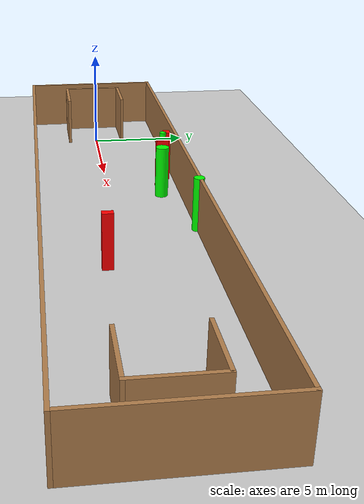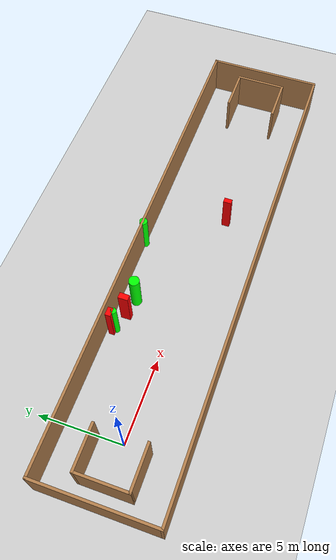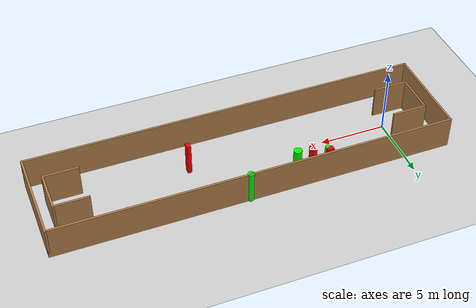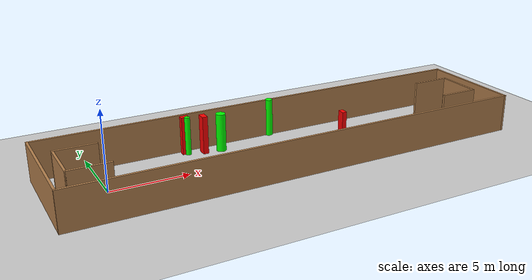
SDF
<sdf version="1.7">
 <world name="default">
  <light name="sun" type="directional">
   <pose>0 0 10 0 -0 0</pose>
   <diffuse>0.8 0.8 0.8 1</diffuse>
   <specular>0.2 0.2 0.2 1</specular>
   <attenuation>
    <range>1000</range>
    <constant>0.9</constant>
    <linear>0.01</linear>
    <quadratic>0.001</quadratic>
   </attenuation>
   <direction>-0.5 0.1 -0.9</direction>
   <spot><inner_angle>0</inner_angle><outer_angle>0</outer_angle><falloff>0</falloff></spot>
  </light>
  <model name="ground_plane">
   <static>1</static>
   <link name="link">
    <collision name="collision">
     <geometry><plane><normal>0 0 1</normal><size>100 100</size></plane></geometry>
     <surface>
      <contact><collide_bitmask>65535</collide_bitmask></contact>
      <friction><ode><mu>100</mu><mu2>50</mu2></ode></friction>
     </surface>
    </collision>
    <visual name="visual">
     <cast_shadows>0</cast_shadows>
     <geometry><plane><normal>0 0 1</normal><size>100 100</size></plane></geometry>
     <material>
      <script><uri>file://media/materials/scripts/gazebo.material</uri><name>Gazebo/Grey</name></script>
     </material>
    </visual>
   </link>
  </model>
  <gravity>0 0 -9.8</gravity>
  <magnetic_field>6e-06 2.3e-05 -4.2e-05</magnetic_field>
  <atmosphere type="adiabatic"/>
  <physics type="ode">
   <max_step_size>0.001</max_step_size>
   <real_time_factor>1</real_time_factor>
   <real_time_update_rate>1000</real_time_update_rate>
  </physics>
  <scene><ambient>0.4 0.4 0.4 1</ambient><background>0.7 0.7 0.7 1</background><shadows>1</shadows></scene>
  <spherical_coordinates>
   <surface_model>EARTH_WGS84</surface_model>
   <latitude_deg>0</latitude_deg>
   <longitude_deg>0</longitude_deg>
   <elevation>0</elevation>
   <heading_deg>0</heading_deg>
  </spherical_coordinates>
  <model name="my_base_walls">
   <link name="Wall_0">
    <collision name="Wall_0_Collision">
     <geometry><box><size>7.15 0.15 2.5</size></box></geometry>
     <pose>0 0 1.25 0 -0 0</pose>
    </collision>
    <visual name="Wall_0_Visual">
     <pose>0 0 1.25 0 -0 0</pose>
     <geometry><box><size>7.15 0.15 2.5</size></box></geometry>
     <material>
      <script><uri>file://media/materials/scripts/gazebo.material</uri><name>Gazebo/Wood</name></script>
      <ambient>1 1 1 1</ambient>
     </material>
     <meta><layer>0</layer></meta>
    </visual>
    <pose>-15 0 0 0 -0 1.5708</pose>
   </link>
   <link name="Wall_10">
    <collision name="Wall_10_Collision">
     <geometry><box><size>2.65 0.15 2.5</size></box></geometry>
     <pose>0 0 1.25 0 -0 0</pose>
    </collision>
    <visual name="Wall_10_Visual">
     <pose>0 0 1.25 0 -0 0</pose>
     <geometry><box><size>2.65 0.15 2.5</size></box></geometry>
     <material>
      <script><uri>file://media/materials/scripts/gazebo.material</uri><name>Gazebo/Wood</name></script>
      <ambient>1 1 1 1</ambient>
     </material>
     <meta><layer>0</layer></meta>
    </visual>
    <pose>-12.75 -1.5 0 0 -0 0</pose>
   </link>
   <link name="Wall_12">
    <collision name="Wall_12_Collision">
     <geometry><box><size>2.65 0.15 2.5</size></box></geometry>
     <pose>0 0 1.25 0 -0 0</pose>
    </collision>
    <visual name="Wall_12_Visual">
     <pose>0 0 1.25 0 -0 0</pose>
     <geometry><box><size>2.65 0.15 2.5</size></box></geometry>
     <material>
      <script><uri>file://media/materials/scripts/gazebo.material</uri><name>Gazebo/Wood</name></script>
      <ambient>1 1 1 1</ambient>
     </material>
     <meta><layer>0</layer></meta>
    </visual>
    <pose>-12.75 1.5 0 0 -0 0</pose>
   </link>
   <link name="Wall_14">
    <collision name="Wall_14_Collision">
     <geometry><box><size>3.15 0.15 2.5</size></box></geometry>
     <pose>0 0 1.25 0 -0 0</pose>
    </collision>
    <visual name="Wall_14_Visual">
     <pose>0 0 1.25 0 -0 0</pose>
     <geometry><box><size>3.15 0.15 2.5</size></box></geometry>
     <material>
      <script><uri>file://media/materials/scripts/gazebo.material</uri><name>Gazebo/Wood</name></script>
      <ambient>1 1 1 1</ambient>
     </material>
     <meta><layer>0</layer></meta>
    </visual>
    <pose>14 0 0 0 -0 -1.5708</pose>
   </link>
   <link name="Wall_15">
    <collision name="Wall_15_Collision">
     <geometry><box><size>2.65 0.15 2.5</size></box></geometry>
     <pose>0 0 1.25 0 -0 0</pose>
    </collision>
    <visual name="Wall_15_Visual">
     <pose>0 0 1.25 0 -0 0</pose>
     <geometry><box><size>2.65 0.15 2.5</size></box></geometry>
     <material>
      <script><uri>file://media/materials/scripts/gazebo.material</uri><name>Gazebo/Wood</name></script>
      <ambient>1 1 1 1</ambient>
     </material>
     <meta><layer>0</layer></meta>
    </visual>
    <pose>12.75 -1.5 0 0 -0 3.14159</pose>
   </link>
   <link name="Wall_17">
    <collision name="Wall_17_Collision">
     <geometry><box><size>2.65 0.15 2.5</size></box></geometry>
     <pose>0 0 1.25 0 -0 0</pose>
    </collision>
    <visual name="Wall_17_Visual">
     <pose>0 0 1.25 0 -0 0</pose>
     <geometry><box><size>2.65 0.15 2.5</size></box></geometry>
     <material>
      <script><uri>file://media/materials/scripts/gazebo.material</uri><name>Gazebo/Wood</name></script>
      <ambient>1 1 1 1</ambient>
     </material>
     <meta><layer>0</layer></meta>
    </visual>
    <pose>12.75 1.5 0 0 -0 3.14159</pose>
   </link>
   <link name="Wall_2">
    <collision name="Wall_2_Collision">
     <geometry><box><size>30.15 0.15 2.5</size></box></geometry>
     <pose>0 0 1.25 0 -0 0</pose>
    </collision>
    <visual name="Wall_2_Visual">
     <pose>0 0 1.25 0 -0 0</pose>
     <geometry><box><size>30.15 0.15 2.5</size></box></geometry>
     <material>
      <script><uri>file://media/materials/scripts/gazebo.material</uri><name>Gazebo/Wood</name></script>
      <ambient>1 1 1 1</ambient>
     </material>
     <meta><layer>0</layer></meta>
    </visual>
    <pose>-0 -3.5 0 0 -0 0</pose>
   </link>
   <link name="Wall_4">
    <collision name="Wall_4_Collision">
     <geometry><box><size>30.15 0.15 2.5</size></box></geometry>
     <pose>0 0 1.25 0 -0 0</pose>
    </collision>
    <visual name="Wall_4_Visual">
     <pose>0 0 1.25 0 -0 0</pose>
     <geometry><box><size>30.15 0.15 2.5</size></box></geometry>
     <material>
      <script><uri>file://media/materials/scripts/gazebo.material</uri><name>Gazebo/Wood</name></script>
      <ambient>1 1 1 1</ambient>
     </material>
     <meta><layer>0</layer></meta>
    </visual>
    <pose>-0 3.5 0 0 -0 0</pose>
   </link>
   <link name="Wall_6">
    <collision name="Wall_6_Collision">
     <geometry><box><size>7.15 0.15 2.5</size></box></geometry>
     <pose>0 0 1.25 0 -0 0</pose>
    </collision>
    <visual name="Wall_6_Visual">
     <pose>0 0 1.25 0 -0 0</pose>
     <geometry><box><size>7.15 0.15 2.5</size></box></geometry>
     <material>
      <script><uri>file://media/materials/scripts/gazebo.material</uri><name>Gazebo/Wood</name></script>
      <ambient>1 1 1 1</ambient>
     </material>
     <meta><layer>0</layer></meta>
    </visual>
    <pose>15 0 0 0 -0 -1.5708</pose>
   </link>
   <link name="Wall_9">
    <collision name="Wall_9_Collision">
     <geometry><box><size>3.15 0.15 2.5</size></box></geometry>
     <pose>0 0 1.25 0 -0 0</pose>
    </collision>
    <visual name="Wall_9_Visual">
     <pose>0 0 1.25 0 -0 0</pose>
     <geometry><box><size>3.15 0.15 2.5</size></box></geometry>
     <material>
      <script><uri>file://media/materials/scripts/gazebo.material</uri><name>Gazebo/Wood</name></script>
      <ambient>1 1 1 1</ambient>
     </material>
     <meta><layer>0</layer></meta>
    </visual>
    <pose>-14 0 0 0 -0 -1.5708</pose>
   </link>
   <static>1</static>
   <pose>11.5 0 0 0 -0 0</pose>
  </model>
  <model name="cylinder1">
   <static>1</static>
   <link name="link">
    <inertial>
     <mass>1</mass>
     <inertia><ixx>0.5</ixx><ixy>0</ixy><ixz>0</ixz><iyy>0.5</iyy><iyz>0</iyz><izz>1</izz></inertia>
    </inertial>
    <collision name="collision">
     <geometry><cylinder><radius>0.17853001473368346</radius><length>2.5</length></cylinder></geometry>
    </collision>
    <visual name="visual">
     <geometry><cylinder><radius>0.17853001473368346</radius><length>2.5</length></cylinder></geometry>
     <material>
      <ambient>0 1 0 1</ambient>
      <diffuse>0 1 0 1</diffuse>
      <specular>0.1 0.1 0.1 1</specular>
      <emissive>0 0 0 0</emissive>
     </material>
    </visual>
   </link>
   <pose>6.066902983302304 2.896833456004435 1.25 0 0 0</pose>
  </model>
  <model name="cylinder2">
   <static>1</static>
   <link name="link">
    <inertial>
     <mass>1</mass>
     <inertia><ixx>0.5</ixx><ixy>0</ixy><ixz>0</ixz><iyy>0.5</iyy><iyz>0</iyz><izz>1</izz></inertia>
    </inertial>
    <collision name="collision">
     <geometry><cylinder><radius>0.2392869145465205</radius><length>2.5</length></cylinder></geometry>
    </collision>
    <visual name="visual">
     <geometry><cylinder><radius>0.2392869145465205</radius><length>2.5</length></cylinder></geometry>
     <material>
      <ambient>0 1 0 1</ambient>
      <diffuse>0 1 0 1</diffuse>
      <specular>0.1 0.1 0.1 1</specular>
      <emissive>0 0 0 0</emissive>
     </material>
    </visual>
   </link>
   <pose>12.118771127415677 3.456945497676921 1.25 0 0 0</pose>
  </model>
  <model name="cylinder3">
   <static>1</static>
   <link name="link">
    <inertial>
     <mass>1</mass>
     <inertia><ixx>0.5</ixx><ixy>0</ixy><ixz>0</ixz><iyy>0.5</iyy><iyz>0</iyz><izz>1</izz></inertia>
    </inertial>
    <collision name="collision">
     <geometry><cylinder><radius>0.312682177288598</radius><length>2.5</length></cylinder></geometry>
    </collision>
    <visual name="visual">
     <geometry><cylinder><radius>0.312682177288598</radius><length>2.5</length></cylinder></geometry>
     <material>
      <ambient>0 1 0 1</ambient>
      <diffuse>0 1 0 1</diffuse>
      <specular>0.1 0.1 0.1 1</specular>
      <emissive>0 0 0 0</emissive>
     </material>
    </visual>
   </link>
   <pose>8.175047107083431 2.5067023259381394 1.25 0 0 0</pose>
  </model>
  <model name="box1">
   <static>1</static>
   <link name="link">
    <inertial>
     <mass>1</mass>
     <inertia><ixx>0.083</ixx><ixy>0</ixy><ixz>0</ixz><iyy>0.083</iyy><iyz>0</iyz><izz>0.083</izz></inertia>
    </inertial>
    <collision name="collision">
     <geometry><box><size>0.3479783534464128 0.5890927856139192 2.5</size></box></geometry>
    </collision>
    <visual name="visual">
     <geometry><box><size>0.3479783534464128 0.5890927856139192 2.5</size></box></geometry>
     <material>
      <ambient>1 0 0 1</ambient>
      <diffuse>1 0 0 1</diffuse>
      <specular>0.1 0.1 0.1 1</specular>
      <emissive>0 0 0 0</emissive>
     </material>
    </visual>
    <sensor name="my_contact" type="contact">
     <contact><collision>box_collision</collision><topic>__default_topic__</topic></contact>
    </sensor>
   </link>
   <pose>7.0673790441257704 2.6826358842757294 1.25 0 0 0</pose>
  </model>
  <model name="box2">
   <static>1</static>
   <link name="link">
    <inertial>
     <mass>1</mass>
     <inertia><ixx>0.083</ixx><ixy>0</ixy><ixz>0</ixz><iyy>0.083</iyy><iyz>0</iyz><izz>0.083</izz></inertia>
    </inertial>
    <collision name="collision">
     <geometry><box><size>0.5015589551075541 0.3287009865193836 2.5</size></box></geometry>
    </collision>
    <visual name="visual">
     <geometry><box><size>0.5015589551075541 0.3287009865193836 2.5</size></box></geometry>
     <material>
      <ambient>1 0 0 1</ambient>
      <diffuse>1 0 0 1</diffuse>
      <specular>0.1 0.1 0.1 1</specular>
      <emissive>0 0 0 0</emissive>
     </material>
    </visual>
    <sensor name="my_contact" type="contact">
     <contact><collision>box_collision</collision><topic>__default_topic__</topic></contact>
    </sensor>
   </link>
   <pose>5.947339202918025 3.0850773964025917 1.25 0 0 0</pose>
  </model>
  <model name="box3">
   <static>1</static>
   <link name="link">
    <inertial>
     <mass>1</mass>
     <inertia><ixx>0.083</ixx><ixy>0</ixy><ixz>0</ixz><iyy>0.083</iyy><iyz>0</iyz><izz>0.083</izz></inertia>
    </inertial>
    <collision name="collision">
     <geometry><box><size>0.30287305647742196 0.4849454930423948 2.5</size></box></geometry>
    </collision>
    <visual name="visual">
     <geometry><box><size>0.30287305647742196 0.4849454930423948 2.5</size></box></geometry>
     <material>
      <ambient>1 0 0 1</ambient>
      <diffuse>1 0 0 1</diffuse>
      <specular>0.1 0.1 0.1 1</specular>
      <emissive>0 0 0 0</emissive>
     </material>
    </visual>
    <sensor name="my_contact" type="contact">
     <contact><collision>box_collision</collision><topic>__default_topic__</topic></contact>
    </sensor>
   </link>
   <pose>15.190072924406273 -0.8430252772325861 1.25 0 0 0</pose>
  </model>
 </world>
</sdf>
